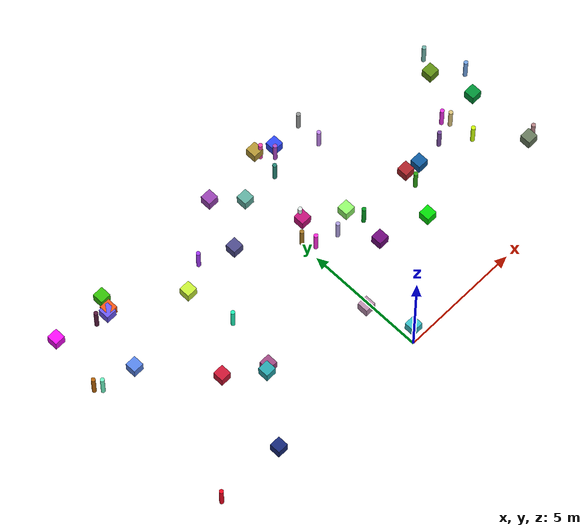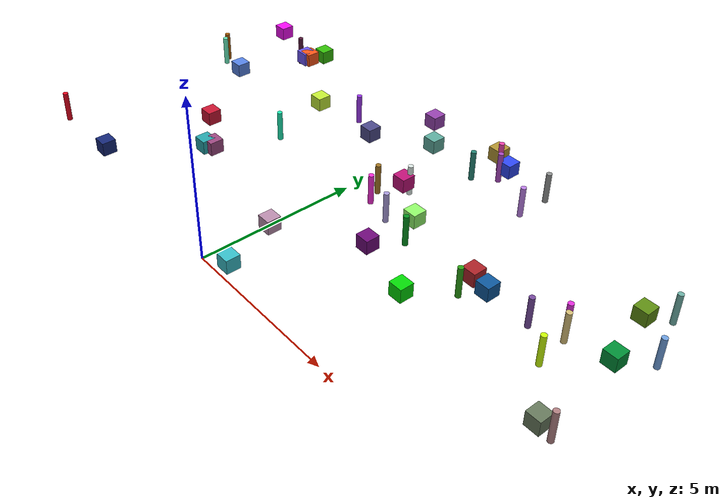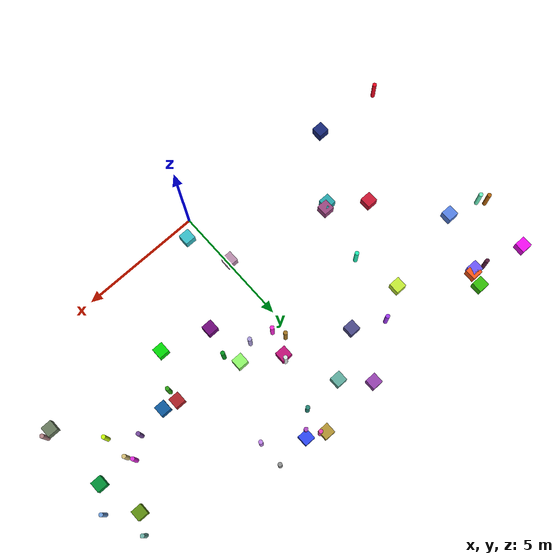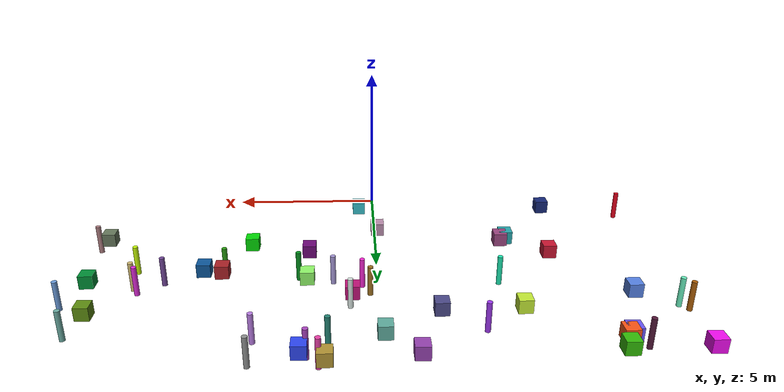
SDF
<sdf version="1.7">
 <world name="warehouse">
  <model name="ground_plane">
   <static>true</static>
   <link name="link">
    <collision name="collision">
     <geometry><plane><normal>0.0 0.0 1</normal><size>1 1</size></plane></geometry>
    </collision>
   </link>
  </model>
  <model name="unit_cylinder_0">
   <static>true</static>
   <pose>-9.31 0.74 0 0 0 0</pose>
   <link name="link">
    <collision name="collision">
     <geometry><cylinder><radius>0.085000</radius><length>1.000000</length></cylinder></geometry>
    </collision>
    <visual name="visual">
     <geometry><cylinder><radius>0.085000</radius><length>1.000000</length></cylinder></geometry>
     <material>
      <ambient>0.9047835029406357 0.023051582319463026 0.11915560714178841 1</ambient>
      <diffuse>0.9047835029406357 0.023051582319463026 0.11915560714178841 1</diffuse>
      <script><uri>file://media/materials/scripts/gazebo.material</uri><name>Gazebo/RandomColor0</name></script>
     </material>
    </visual>
   </link>
  </model>
  <model name="unit_cylinder_1">
   <static>true</static>
   <pose>2.09 9.25 0 0 0 0</pose>
   <link name="link">
    <collision name="collision">
     <geometry><cylinder><radius>0.085000</radius><length>1.000000</length></cylinder></geometry>
    </collision>
    <visual name="visual">
     <geometry><cylinder><radius>0.085000</radius><length>1.000000</length></cylinder></geometry>
     <material>
      <ambient>0.6712236063052989 0.28022208477753974 0.7576344542905525 1</ambient>
      <diffuse>0.6712236063052989 0.28022208477753974 0.7576344542905525 1</diffuse>
      <script><uri>file://media/materials/scripts/gazebo.material</uri><name>Gazebo/RandomColor1</name></script>
     </material>
    </visual>
   </link>
  </model>
  <model name="unit_box_4">
   <static>true</static>
   <pose>2.26 9.46 0 0 0 0</pose>
   <link name="link">
    <collision name="collision">
     <geometry><box><size>0.450000 0.450000 0.450000</size></box></geometry>
    </collision>
    <visual name="visual">
     <geometry><box><size>0.450000 0.450000 0.450000</size></box></geometry>
     <material>
      <ambient>0.17914409994291802 0.2792094183445011 0.9497461319518756 1</ambient>
      <diffuse>0.17914409994291802 0.2792094183445011 0.9497461319518756 1</diffuse>
      <script><uri>file://media/materials/scripts/gazebo.material</uri><name>Gazebo/RandomColor4</name></script>
     </material>
    </visual>
   </link>
  </model>
  <model name="unit_cylinder_4">
   <static>true</static>
   <pose>7.89 4.45 0 0 0 0</pose>
   <link name="link">
    <collision name="collision">
     <geometry><cylinder><radius>0.085000</radius><length>1.000000</length></cylinder></geometry>
    </collision>
    <visual name="visual">
     <geometry><cylinder><radius>0.085000</radius><length>1.000000</length></cylinder></geometry>
     <material>
      <ambient>0.7889028668075904 0.9948711298306502 0.03364927283112962 1</ambient>
      <diffuse>0.7889028668075904 0.9948711298306502 0.03364927283112962 1</diffuse>
      <script><uri>file://media/materials/scripts/gazebo.material</uri><name>Gazebo/RandomColor4</name></script>
     </material>
    </visual>
   </link>
  </model>
  <model name="unit_box_5">
   <static>true</static>
   <pose>1.55 9.8 0 0 0 0</pose>
   <link name="link">
    <collision name="collision">
     <geometry><box><size>0.450000 0.450000 0.450000</size></box></geometry>
    </collision>
    <visual name="visual">
     <geometry><box><size>0.450000 0.450000 0.450000</size></box></geometry>
     <material>
      <ambient>0.6938712094746721 0.5785267622158523 0.20112905594126762 1</ambient>
      <diffuse>0.6938712094746721 0.5785267622158523 0.20112905594126762 1</diffuse>
      <script><uri>file://media/materials/scripts/gazebo.material</uri><name>Gazebo/RandomColor5</name></script>
     </material>
    </visual>
   </link>
  </model>
  <model name="unit_cylinder_5">
   <static>true</static>
   <pose>6.85 5.22 0 0 0 0</pose>
   <link name="link">
    <collision name="collision">
     <geometry><cylinder><radius>0.085000</radius><length>1.000000</length></cylinder></geometry>
    </collision>
    <visual name="visual">
     <geometry><cylinder><radius>0.085000</radius><length>1.000000</length></cylinder></geometry>
     <material>
      <ambient>0.46176612906261505 0.29041169554525215 0.6156618961442007 1</ambient>
      <diffuse>0.46176612906261505 0.29041169554525215 0.6156618961442007 1</diffuse>
      <script><uri>file://media/materials/scripts/gazebo.material</uri><name>Gazebo/RandomColor5</name></script>
     </material>
    </visual>
   </link>
  </model>
  <model name="unit_box_6">
   <static>true</static>
   <pose>-7.88 6.69 0 0 0 0</pose>
   <link name="link">
    <collision name="collision">
     <geometry><box><size>0.450000 0.450000 0.450000</size></box></geometry>
    </collision>
    <visual name="visual">
     <geometry><box><size>0.450000 0.450000 0.450000</size></box></geometry>
     <material>
      <ambient>0.3386169194189679 0.5125222105807047 0.8989240729054137 1</ambient>
      <diffuse>0.3386169194189679 0.5125222105807047 0.8989240729054137 1</diffuse>
      <script><uri>file://media/materials/scripts/gazebo.material</uri><name>Gazebo/RandomColor6</name></script>
     </material>
    </visual>
   </link>
  </model>
  <model name="unit_cylinder_6">
   <static>true</static>
   <pose>1.73 9.67 0 0 0 0</pose>
   <link name="link">
    <collision name="collision">
     <geometry><cylinder><radius>0.085000</radius><length>1.000000</length></cylinder></geometry>
    </collision>
    <visual name="visual">
     <geometry><cylinder><radius>0.085000</radius><length>1.000000</length></cylinder></geometry>
     <material>
      <ambient>0.9161633150298063 0.25547223576205313 0.6629133839460231 1</ambient>
      <diffuse>0.9161633150298063 0.25547223576205313 0.6629133839460231 1</diffuse>
      <script><uri>file://media/materials/scripts/gazebo.material</uri><name>Gazebo/RandomColor6</name></script>
     </material>
    </visual>
   </link>
  </model>
  <model name="unit_cylinder_8">
   <static>true</static>
   <pose>2.53 5.01 0 0 0 0</pose>
   <link name="link">
    <collision name="collision">
     <geometry><cylinder><radius>0.085000</radius><length>1.000000</length></cylinder></geometry>
    </collision>
    <visual name="visual">
     <geometry><cylinder><radius>0.085000</radius><length>1.000000</length></cylinder></geometry>
     <material>
      <ambient>0.01718716941875098 0.5703696041209311 0.11978460807293412 1</ambient>
      <diffuse>0.01718716941875098 0.5703696041209311 0.11978460807293412 1</diffuse>
      <script><uri>file://media/materials/scripts/gazebo.material</uri><name>Gazebo/RandomColor8</name></script>
     </material>
    </visual>
   </link>
  </model>
  <model name="unit_cylinder_9">
   <static>true</static>
   <pose>-3.94 5.5 0 0 0 0</pose>
   <link name="link">
    <collision name="collision">
     <geometry><cylinder><radius>0.085000</radius><length>1.000000</length></cylinder></geometry>
    </collision>
    <visual name="visual">
     <geometry><cylinder><radius>0.085000</radius><length>1.000000</length></cylinder></geometry>
     <material>
      <ambient>0.1116179027003883 0.9087895362525779 0.6960776950246852 1</ambient>
      <diffuse>0.1116179027003883 0.9087895362525779 0.6960776950246852 1</diffuse>
      <script><uri>file://media/materials/scripts/gazebo.material</uri><name>Gazebo/RandomColor9</name></script>
     </material>
    </visual>
   </link>
  </model>
  <model name="unit_box_10">
   <static>true</static>
   <pose>-1.84 7.51 0 0 0 0</pose>
   <link name="link">
    <collision name="collision">
     <geometry><box><size>0.450000 0.450000 0.450000</size></box></geometry>
    </collision>
    <visual name="visual">
     <geometry><box><size>0.450000 0.450000 0.450000</size></box></geometry>
     <material>
      <ambient>0.2973531770069371 0.28898520929455274 0.5385525794331161 1</ambient>
      <diffuse>0.2973531770069371 0.28898520929455274 0.5385525794331161 1</diffuse>
      <script><uri>file://media/materials/scripts/gazebo.material</uri><name>Gazebo/RandomColor10</name></script>
     </material>
    </visual>
   </link>
  </model>
  <model name="unit_cylinder_10">
   <static>true</static>
   <pose>4.96 4.65 0 0 0 0</pose>
   <link name="link">
    <collision name="collision">
     <geometry><cylinder><radius>0.085000</radius><length>1.000000</length></cylinder></geometry>
    </collision>
    <visual name="visual">
     <geometry><cylinder><radius>0.085000</radius><length>1.000000</length></cylinder></geometry>
     <material>
      <ambient>0.16912934506949673 0.6153553816697053 0.07822861433148753 1</ambient>
      <diffuse>0.16912934506949673 0.6153553816697053 0.07822861433148753 1</diffuse>
      <script><uri>file://media/materials/scripts/gazebo.material</uri><name>Gazebo/RandomColor10</name></script>
     </material>
    </visual>
   </link>
  </model>
  <model name="unit_box_11">
   <static>true</static>
   <pose>2.23 3.88 0 0 0 0</pose>
   <link name="link">
    <collision name="collision">
     <geometry><box><size>0.450000 0.450000 0.450000</size></box></geometry>
    </collision>
    <visual name="visual">
     <geometry><box><size>0.450000 0.450000 0.450000</size></box></geometry>
     <material>
      <ambient>0.4302361310819982 0.03853227566153339 0.47764017015302784 1</ambient>
      <diffuse>0.4302361310819982 0.03853227566153339 0.47764017015302784 1</diffuse>
      <script><uri>file://media/materials/scripts/gazebo.material</uri><name>Gazebo/RandomColor11</name></script>
     </material>
    </visual>
   </link>
  </model>
  <model name="unit_box_12">
   <static>true</static>
   <pose>4.97 5.17 0 0 0 0</pose>
   <link name="link">
    <collision name="collision">
     <geometry><box><size>0.450000 0.450000 0.450000</size></box></geometry>
    </collision>
    <visual name="visual">
     <geometry><box><size>0.450000 0.450000 0.450000</size></box></geometry>
     <material>
      <ambient>0.6669949250603554 0.13138758846844167 0.15571909348334123 1</ambient>
      <diffuse>0.6669949250603554 0.13138758846844167 0.15571909348334123 1</diffuse>
      <script><uri>file://media/materials/scripts/gazebo.material</uri><name>Gazebo/RandomColor12</name></script>
     </material>
    </visual>
   </link>
  </model>
  <model name="unit_cylinder_13">
   <static>true</static>
   <pose>1.41 5.28 0 0 0 0</pose>
   <link name="link">
    <collision name="collision">
     <geometry><cylinder><radius>0.085000</radius><length>1.000000</length></cylinder></geometry>
    </collision>
    <visual name="visual">
     <geometry><cylinder><radius>0.085000</radius><length>1.000000</length></cylinder></geometry>
     <material>
      <ambient>0.6605344561724622 0.6056137770944351 0.856247741376489 1</ambient>
      <diffuse>0.6605344561724622 0.6056137770944351 0.856247741376489 1</diffuse>
      <script><uri>file://media/materials/scripts/gazebo.material</uri><name>Gazebo/RandomColor13</name></script>
     </material>
    </visual>
   </link>
  </model>
  <model name="unit_box_14">
   <static>true</static>
   <pose>0.79 6.53 0 0 0 0</pose>
   <link name="link">
    <collision name="collision">
     <geometry><box><size>0.450000 0.450000 0.450000</size></box></geometry>
    </collision>
    <visual name="visual">
     <geometry><box><size>0.450000 0.450000 0.450000</size></box></geometry>
     <material>
      <ambient>0.7538153398190163 0.06795699227822727 0.47259510909941604 1</ambient>
      <diffuse>0.7538153398190163 0.06795699227822727 0.47259510909941604 1</diffuse>
      <script><uri>file://media/materials/scripts/gazebo.material</uri><name>Gazebo/RandomColor14</name></script>
     </material>
    </visual>
   </link>
  </model>
  <model name="unit_box_15">
   <static>true</static>
   <pose>-6.75 9.57 0 0 0 0</pose>
   <link name="link">
    <collision name="collision">
     <geometry><box><size>0.450000 0.450000 0.450000</size></box></geometry>
    </collision>
    <visual name="visual">
     <geometry><box><size>0.450000 0.450000 0.450000</size></box></geometry>
     <material>
      <ambient>0.20076225076161447 0.7393719394519983 0.032462188200200526 1</ambient>
      <diffuse>0.20076225076161447 0.7393719394519983 0.032462188200200526 1</diffuse>
      <script><uri>file://media/materials/scripts/gazebo.material</uri><name>Gazebo/RandomColor15</name></script>
     </material>
    </visual>
   </link>
  </model>
  <model name="unit_cylinder_15">
   <static>true</static>
   <pose>-9.23 6.99 0 0 0 0</pose>
   <link name="link">
    <collision name="collision">
     <geometry><cylinder><radius>0.085000</radius><length>1.000000</length></cylinder></geometry>
    </collision>
    <visual name="visual">
     <geometry><cylinder><radius>0.085000</radius><length>1.000000</length></cylinder></geometry>
     <material>
      <ambient>0.41721241977985624 0.9431030662051431 0.7522219734489143 1</ambient>
      <diffuse>0.41721241977985624 0.9431030662051431 0.7522219734489143 1</diffuse>
      <script><uri>file://media/materials/scripts/gazebo.material</uri><name>Gazebo/RandomColor15</name></script>
     </material>
    </visual>
   </link>
  </model>
  <model name="unit_box_16">
   <static>true</static>
   <pose>-6.45 0.63 0 0 0 0</pose>
   <link name="link">
    <collision name="collision">
     <geometry><box><size>0.450000 0.450000 0.450000</size></box></geometry>
    </collision>
    <visual name="visual">
     <geometry><box><size>0.450000 0.450000 0.450000</size></box></geometry>
     <material>
      <ambient>0.0846283154373142 0.15501449194377537 0.4669067940072428 1</ambient>
      <diffuse>0.0846283154373142 0.15501449194377537 0.4669067940072428 1</diffuse>
      <script><uri>file://media/materials/scripts/gazebo.material</uri><name>Gazebo/RandomColor16</name></script>
     </material>
    </visual>
   </link>
  </model>
  <model name="unit_cylinder_17">
   <static>true</static>
   <pose>3.67 9.57 0 0 0 0</pose>
   <link name="link">
    <collision name="collision">
     <geometry><cylinder><radius>0.085000</radius><length>1.000000</length></cylinder></geometry>
    </collision>
    <visual name="visual">
     <geometry><cylinder><radius>0.085000</radius><length>1.000000</length></cylinder></geometry>
     <material>
      <ambient>0.5582854123085184 0.5653918887851312 0.562862018053068 1</ambient>
      <diffuse>0.5582854123085184 0.5653918887851312 0.562862018053068 1</diffuse>
      <script><uri>file://media/materials/scripts/gazebo.material</uri><name>Gazebo/RandomColor17</name></script>
     </material>
    </visual>
   </link>
  </model>
  <model name="unit_box_19">
   <static>true</static>
   <pose>-6.92 9.04 0 0 0 0</pose>
   <link name="link">
    <collision name="collision">
     <geometry><box><size>0.450000 0.450000 0.450000</size></box></geometry>
    </collision>
    <visual name="visual">
     <geometry><box><size>0.450000 0.450000 0.450000</size></box></geometry>
     <material>
      <ambient>0.9895236635824118 0.3355351557203067 0.09421623000026991 1</ambient>
      <diffuse>0.9895236635824118 0.3355351557203067 0.09421623000026991 1</diffuse>
      <script><uri>file://media/materials/scripts/gazebo.material</uri><name>Gazebo/RandomColor19</name></script>
     </material>
    </visual>
   </link>
  </model>
  <model name="unit_box_20">
   <static>true</static>
   <pose>4.21 3.3 0 0 0 0</pose>
   <link name="link">
    <collision name="collision">
     <geometry><box><size>0.450000 0.450000 0.450000</size></box></geometry>
    </collision>
    <visual name="visual">
     <geometry><box><size>0.450000 0.450000 0.450000</size></box></geometry>
     <material>
      <ambient>0.013677003550276567 0.848537743852048 0.026521367413688712 1</ambient>
      <diffuse>0.013677003550276567 0.848537743852048 0.026521367413688712 1</diffuse>
      <script><uri>file://media/materials/scripts/gazebo.material</uri><name>Gazebo/RandomColor20</name></script>
     </material>
    </visual>
   </link>
  </model>
  <model name="unit_cylinder_20">
   <static>true</static>
   <pose>0.23 6.01 0 0 0 0</pose>
   <link name="link">
    <collision name="collision">
     <geometry><cylinder><radius>0.085000</radius><length>1.000000</length></cylinder></geometry>
    </collision>
    <visual name="visual">
     <geometry><cylinder><radius>0.085000</radius><length>1.000000</length></cylinder></geometry>
     <material>
      <ambient>0.6309131872008131 0.45204805856701114 0.13549408073202385 1</ambient>
      <diffuse>0.6309131872008131 0.45204805856701114 0.13549408073202385 1</diffuse>
      <script><uri>file://media/materials/scripts/gazebo.material</uri><name>Gazebo/RandomColor20</name></script>
     </material>
    </visual>
   </link>
  </model>
  <model name="unit_box_21">
   <static>true</static>
   <pose>-4.58 3.09 0 0 0 0</pose>
   <link name="link">
    <collision name="collision">
     <geometry><box><size>0.450000 0.450000 0.450000</size></box></geometry>
    </collision>
    <visual name="visual">
     <geometry><box><size>0.450000 0.450000 0.450000</size></box></geometry>
     <material>
      <ambient>0.15306389208201765 0.6494699788918694 0.6737951647985277 1</ambient>
      <diffuse>0.15306389208201765 0.6494699788918694 0.6737951647985277 1</diffuse>
      <script><uri>file://media/materials/scripts/gazebo.material</uri><name>Gazebo/RandomColor21</name></script>
     </material>
    </visual>
   </link>
  </model>
  <model name="unit_box_22">
   <static>true</static>
   <pose>9.23 2.81 0 0 0 0</pose>
   <link name="link">
    <collision name="collision">
     <geometry><box><size>0.450000 0.450000 0.450000</size></box></geometry>
    </collision>
    <visual name="visual">
     <geometry><box><size>0.450000 0.450000 0.450000</size></box></geometry>
     <material>
      <ambient>0.4021549974562765 0.4716885419075503 0.36194371682791215 1</ambient>
      <diffuse>0.4021549974562765 0.4716885419075503 0.36194371682791215 1</diffuse>
      <script><uri>file://media/materials/scripts/gazebo.material</uri><name>Gazebo/RandomColor22</name></script>
     </material>
    </visual>
   </link>
  </model>
  <model name="unit_cylinder_22">
   <static>true</static>
   <pose>7.77 5.51 0 0 0 0</pose>
   <link name="link">
    <collision name="collision">
     <geometry><cylinder><radius>0.085000</radius><length>1.000000</length></cylinder></geometry>
    </collision>
    <visual name="visual">
     <geometry><cylinder><radius>0.085000</radius><length>1.000000</length></cylinder></geometry>
     <material>
      <ambient>0.8340204630547031 0.7414760496967856 0.4625020717215428 1</ambient>
      <diffuse>0.8340204630547031 0.7414760496967856 0.4625020717215428 1</diffuse>
      <script><uri>file://media/materials/scripts/gazebo.material</uri><name>Gazebo/RandomColor22</name></script>
     </material>
    </visual>
   </link>
  </model>
  <model name="unit_box_23">
   <static>true</static>
   <pose>-9.13 9.55 0 0 0 0</pose>
   <link name="link">
    <collision name="collision">
     <geometry><box><size>0.450000 0.450000 0.450000</size></box></geometry>
    </collision>
    <visual name="visual">
     <geometry><box><size>0.450000 0.450000 0.450000</size></box></geometry>
     <material>
      <ambient>0.9530057805638175 0.05120913139332506 0.9464714285250747 1</ambient>
      <diffuse>0.9530057805638175 0.05120913139332506 0.9464714285250747 1</diffuse>
      <script><uri>file://media/materials/scripts/gazebo.material</uri><name>Gazebo/RandomColor23</name></script>
     </material>
    </visual>
   </link>
  </model>
  <model name="unit_cylinder_23">
   <static>true</static>
   <pose>1.5 8.69 0 0 0 0</pose>
   <link name="link">
    <collision name="collision">
     <geometry><cylinder><radius>0.085000</radius><length>1.000000</length></cylinder></geometry>
    </collision>
    <visual name="visual">
     <geometry><cylinder><radius>0.085000</radius><length>1.000000</length></cylinder></geometry>
     <material>
      <ambient>0.14821952100664804 0.5195731158705452 0.4574937876894154 1</ambient>
      <diffuse>0.14821952100664804 0.5195731158705452 0.4574937876894154 1</diffuse>
      <script><uri>file://media/materials/scripts/gazebo.material</uri><name>Gazebo/RandomColor23</name></script>
     </material>
    </visual>
   </link>
  </model>
  <model name="unit_cylinder_25">
   <static>true</static>
   <pose>7.59 5.79 0 0 0 0</pose>
   <link name="link">
    <collision name="collision">
     <geometry><cylinder><radius>0.085000</radius><length>1.000000</length></cylinder></geometry>
    </collision>
    <visual name="visual">
     <geometry><cylinder><radius>0.085000</radius><length>1.000000</length></cylinder></geometry>
     <material>
      <ambient>0.8836864098514743 0.17499654515620344 0.8627066899638722 1</ambient>
      <diffuse>0.8836864098514743 0.17499654515620344 0.8627066899638722 1</diffuse>
      <script><uri>file://media/materials/scripts/gazebo.material</uri><name>Gazebo/RandomColor25</name></script>
     </material>
    </visual>
   </link>
  </model>
  <model name="unit_cylinder_27">
   <static>true</static>
   <pose>9.73 6.58 0 0 0 0</pose>
   <link name="link">
    <collision name="collision">
     <geometry><cylinder><radius>0.085000</radius><length>1.000000</length></cylinder></geometry>
    </collision>
    <visual name="visual">
     <geometry><cylinder><radius>0.085000</radius><length>1.000000</length></cylinder></geometry>
     <material>
      <ambient>0.4320293674464467 0.6235219583579364 0.8694835852496756 1</ambient>
      <diffuse>0.4320293674464467 0.6235219583579364 0.8694835852496756 1</diffuse>
      <script><uri>file://media/materials/scripts/gazebo.material</uri><name>Gazebo/RandomColor27</name></script>
     </material>
    </visual>
   </link>
  </model>
  <model name="unit_box_28">
   <static>true</static>
   <pose>9.12 5.63 0 0 0 0</pose>
   <link name="link">
    <collision name="collision">
     <geometry><box><size>0.450000 0.450000 0.450000</size></box></geometry>
    </collision>
    <visual name="visual">
     <geometry><box><size>0.450000 0.450000 0.450000</size></box></geometry>
     <material>
      <ambient>0.0006447651987864234 0.5593685672654196 0.21085211755538158 1</ambient>
      <diffuse>0.0006447651987864234 0.5593685672654196 0.21085211755538158 1</diffuse>
      <script><uri>file://media/materials/scripts/gazebo.material</uri><name>Gazebo/RandomColor28</name></script>
     </material>
    </visual>
   </link>
  </model>
  <model name="unit_box_30">
   <static>true</static>
   <pose>-4.32 7.46 0 0 0 0</pose>
   <link name="link">
    <collision name="collision">
     <geometry><box><size>0.450000 0.450000 0.450000</size></box></geometry>
    </collision>
    <visual name="visual">
     <geometry><box><size>0.450000 0.450000 0.450000</size></box></geometry>
     <material>
      <ambient>0.7692543529741322 0.9234313343259567 0.2104339404650828 1</ambient>
      <diffuse>0.7692543529741322 0.9234313343259567 0.2104339404650828 1</diffuse>
      <script><uri>file://media/materials/scripts/gazebo.material</uri><name>Gazebo/RandomColor30</name></script>
     </material>
    </visual>
   </link>
  </model>
  <model name="unit_box_31">
   <static>true</static>
   <pose>-0.12 2.31 0 0 0 0</pose>
   <link name="link">
    <collision name="collision">
     <geometry><box><size>0.450000 0.450000 0.450000</size></box></geometry>
    </collision>
    <visual name="visual">
     <geometry><box><size>0.450000 0.450000 0.450000</size></box></geometry>
     <material>
      <ambient>0.7276747414798781 0.554531826871016 0.676690822829485 1</ambient>
      <diffuse>0.7276747414798781 0.554531826871016 0.676690822829485 1</diffuse>
      <script><uri>file://media/materials/scripts/gazebo.material</uri><name>Gazebo/RandomColor31</name></script>
     </material>
    </visual>
   </link>
  </model>
  <model name="unit_cylinder_31">
   <static>true</static>
   <pose>3.66 8.48 0 0 0 0</pose>
   <link name="link">
    <collision name="collision">
     <geometry><cylinder><radius>0.085000</radius><length>1.000000</length></cylinder></geometry>
    </collision>
    <visual name="visual">
     <geometry><cylinder><radius>0.085000</radius><length>1.000000</length></cylinder></geometry>
     <material>
      <ambient>0.7385471879682959 0.5002093170028802 0.9034997269496055 1</ambient>
      <diffuse>0.7385471879682959 0.5002093170028802 0.9034997269496055 1</diffuse>
      <script><uri>file://media/materials/scripts/gazebo.material</uri><name>Gazebo/RandomColor31</name></script>
     </material>
    </visual>
   </link>
  </model>
  <model name="unit_box_32">
   <static>true</static>
   <pose>8.66 7.42 0 0 0 0</pose>
   <link name="link">
    <collision name="collision">
     <geometry><box><size>0.450000 0.450000 0.450000</size></box></geometry>
    </collision>
    <visual name="visual">
     <geometry><box><size>0.450000 0.450000 0.450000</size></box></geometry>
     <material>
      <ambient>0.36881332130701894 0.5544101990547647 0.07219693294092733 1</ambient>
      <diffuse>0.36881332130701894 0.5544101990547647 0.07219693294092733 1</diffuse>
      <script><uri>file://media/materials/scripts/gazebo.material</uri><name>Gazebo/RandomColor32</name></script>
     </material>
    </visual>
   </link>
  </model>
  <model name="unit_box_33">
   <static>true</static>
   <pose>-4.37 3.23 0 0 0 0</pose>
   <link name="link">
    <collision name="collision">
     <geometry><box><size>0.450000 0.450000 0.450000</size></box></geometry>
    </collision>
    <visual name="visual">
     <geometry><box><size>0.450000 0.450000 0.450000</size></box></geometry>
     <material>
      <ambient>0.6102460608460141 0.2798656664655472 0.5039664382373764 1</ambient>
      <diffuse>0.6102460608460141 0.2798656664655472 0.5039664382373764 1</diffuse>
      <script><uri>file://media/materials/scripts/gazebo.material</uri><name>Gazebo/RandomColor33</name></script>
     </material>
    </visual>
   </link>
  </model>
  <model name="unit_box_34">
   <static>true</static>
   <pose>-1.07 9.6 0 0 0 0</pose>
   <link name="link">
    <collision name="collision">
     <geometry><box><size>0.450000 0.450000 0.450000</size></box></geometry>
    </collision>
    <visual name="visual">
     <geometry><box><size>0.450000 0.450000 0.450000</size></box></geometry>
     <material>
      <ambient>0.587040395930564 0.259267117937646 0.6878834643616625 1</ambient>
      <diffuse>0.587040395930564 0.259267117937646 0.6878834643616625 1</diffuse>
      <script><uri>file://media/materials/scripts/gazebo.material</uri><name>Gazebo/RandomColor34</name></script>
     </material>
    </visual>
   </link>
  </model>
  <model name="unit_cylinder_34">
   <static>true</static>
   <pose>9.57 2.91 0 0 0 0</pose>
   <link name="link">
    <collision name="collision">
     <geometry><cylinder><radius>0.085000</radius><length>1.000000</length></cylinder></geometry>
    </collision>
    <visual name="visual">
     <geometry><cylinder><radius>0.085000</radius><length>1.000000</length></cylinder></geometry>
     <material>
      <ambient>0.6866265726407823 0.49935770532720625 0.5093734244039786 1</ambient>
      <diffuse>0.6866265726407823 0.49935770532720625 0.5093734244039786 1</diffuse>
      <script><uri>file://media/materials/scripts/gazebo.material</uri><name>Gazebo/RandomColor34</name></script>
     </material>
    </visual>
   </link>
  </model>
  <model name="unit_box_35">
   <static>true</static>
   <pose>-0.12 8.64 0 0 0 0</pose>
   <link name="link">
    <collision name="collision">
     <geometry><box><size>0.450000 0.450000 0.450000</size></box></geometry>
    </collision>
    <visual name="visual">
     <geometry><box><size>0.450000 0.450000 0.450000</size></box></geometry>
     <material>
      <ambient>0.37103700896852265 0.6745916867150451 0.6178975991405595 1</ambient>
      <diffuse>0.37103700896852265 0.6745916867150451 0.6178975991405595 1</diffuse>
      <script><uri>file://media/materials/scripts/gazebo.material</uri><name>Gazebo/RandomColor35</name></script>
     </material>
    </visual>
   </link>
  </model>
  <model name="unit_box_37">
   <static>true</static>
   <pose>2.22 5.63 0 0 0 0</pose>
   <link name="link">
    <collision name="collision">
     <geometry><box><size>0.450000 0.450000 0.450000</size></box></geometry>
    </collision>
    <visual name="visual">
     <geometry><box><size>0.450000 0.450000 0.450000</size></box></geometry>
     <material>
      <ambient>0.5655355417569502 0.9744542568341861 0.4149303030439476 1</ambient>
      <diffuse>0.5655355417569502 0.9744542568341861 0.4149303030439476 1</diffuse>
      <script><uri>file://media/materials/scripts/gazebo.material</uri><name>Gazebo/RandomColor37</name></script>
     </material>
    </visual>
   </link>
  </model>
  <model name="unit_cylinder_38">
   <static>true</static>
   <pose>0.48 5.52 0 0 0 0</pose>
   <link name="link">
    <collision name="collision">
     <geometry><cylinder><radius>0.085000</radius><length>1.000000</length></cylinder></geometry>
    </collision>
    <visual name="visual">
     <geometry><cylinder><radius>0.085000</radius><length>1.000000</length></cylinder></geometry>
     <material>
      <ambient>0.9625965750468826 0.16331736921700157 0.832415129544105 1</ambient>
      <diffuse>0.9625965750468826 0.16331736921700157 0.832415129544105 1</diffuse>
      <script><uri>file://media/materials/scripts/gazebo.material</uri><name>Gazebo/RandomColor38</name></script>
     </material>
    </visual>
   </link>
  </model>
  <model name="unit_box_39">
   <static>true</static>
   <pose>0.52 0.5 0 0 0 0</pose>
   <link name="link">
    <collision name="collision">
     <geometry><box><size>0.450000 0.450000 0.450000</size></box></geometry>
    </collision>
    <visual name="visual">
     <geometry><box><size>0.450000 0.450000 0.450000</size></box></geometry>
     <material>
      <ambient>0.21898739172048365 0.746903744662737 0.7869252483322576 1</ambient>
      <diffuse>0.21898739172048365 0.746903744662737 0.7869252483322576 1</diffuse>
      <script><uri>file://media/materials/scripts/gazebo.material</uri><name>Gazebo/RandomColor39</name></script>
     </material>
    </visual>
   </link>
  </model>
  <model name="unit_cylinder_40">
   <static>true</static>
   <pose>0.86 6.72 0 0 0 0</pose>
   <link name="link">
    <collision name="collision">
     <geometry><cylinder><radius>0.085000</radius><length>1.000000</length></cylinder></geometry>
    </collision>
    <visual name="visual">
     <geometry><cylinder><radius>0.085000</radius><length>1.000000</length></cylinder></geometry>
     <material>
      <ambient>0.8604850820153908 0.9085009655691055 0.8919998509213816 1</ambient>
      <diffuse>0.8604850820153908 0.9085009655691055 0.8919998509213816 1</diffuse>
      <script><uri>file://media/materials/scripts/gazebo.material</uri><name>Gazebo/RandomColor40</name></script>
     </material>
    </visual>
   </link>
  </model>
  <model name="unit_box_41">
   <static>true</static>
   <pose>-7.04 8.97 0 0 0 0</pose>
   <link name="link">
    <collision name="collision">
     <geometry><box><size>0.450000 0.450000 0.450000</size></box></geometry>
    </collision>
    <visual name="visual">
     <geometry><box><size>0.450000 0.450000 0.450000</size></box></geometry>
     <material>
      <ambient>0.42556767491030834 0.3456346508214705 0.9731826293789653 1</ambient>
      <diffuse>0.42556767491030834 0.3456346508214705 0.9731826293789653 1</diffuse>
      <script><uri>file://media/materials/scripts/gazebo.material</uri><name>Gazebo/RandomColor41</name></script>
     </material>
    </visual>
   </link>
  </model>
  <model name="unit_cylinder_42">
   <static>true</static>
   <pose>-7.51 9.09 0 0 0 0</pose>
   <link name="link">
    <collision name="collision">
     <geometry><cylinder><radius>0.085000</radius><length>1.000000</length></cylinder></geometry>
    </collision>
    <visual name="visual">
     <geometry><cylinder><radius>0.085000</radius><length>1.000000</length></cylinder></geometry>
     <material>
      <ambient>0.32826240341481605 0.09714189223303127 0.22781184735037208 1</ambient>
      <diffuse>0.32826240341481605 0.09714189223303127 0.22781184735037208 1</diffuse>
      <script><uri>file://media/materials/scripts/gazebo.material</uri><name>Gazebo/RandomColor42</name></script>
     </material>
    </visual>
   </link>
  </model>
  <model name="unit_box_45">
   <static>true</static>
   <pose>-5.87 4.14 0 0 0 0</pose>
   <link name="link">
    <collision name="collision">
     <geometry><box><size>0.450000 0.450000 0.450000</size></box></geometry>
    </collision>
    <visual name="visual">
     <geometry><box><size>0.450000 0.450000 0.450000</size></box></geometry>
     <material>
      <ambient>0.7906683940872864 0.08502529661714808 0.19968080262191634 1</ambient>
      <diffuse>0.7906683940872864 0.08502529661714808 0.19968080262191634 1</diffuse>
      <script><uri>file://media/materials/scripts/gazebo.material</uri><name>Gazebo/RandomColor45</name></script>
     </material>
    </visual>
   </link>
  </model>
  <model name="unit_cylinder_45">
   <static>true</static>
   <pose>-9.46 7.23 0 0 0 0</pose>
   <link name="link">
    <collision name="collision">
     <geometry><cylinder><radius>0.085000</radius><length>1.000000</length></cylinder></geometry>
    </collision>
    <visual name="visual">
     <geometry><cylinder><radius>0.085000</radius><length>1.000000</length></cylinder></geometry>
     <material>
      <ambient>0.691054011778042 0.37989427606211834 0.03906034851589968 1</ambient>
      <diffuse>0.691054011778042 0.37989427606211834 0.03906034851589968 1</diffuse>
      <script><uri>file://media/materials/scripts/gazebo.material</uri><name>Gazebo/RandomColor45</name></script>
     </material>
    </visual>
   </link>
  </model>
  <model name="unit_cylinder_46">
   <static>true</static>
   <pose>-3.12 8.13 0 0 0 0</pose>
   <link name="link">
    <collision name="collision">
     <geometry><cylinder><radius>0.085000</radius><length>1.000000</length></cylinder></geometry>
    </collision>
    <visual name="visual">
     <geometry><cylinder><radius>0.085000</radius><length>1.000000</length></cylinder></geometry>
     <material>
      <ambient>0.6153120942940867 0.21540389297492268 0.9340478646536884 1</ambient>
      <diffuse>0.6153120942940867 0.21540389297492268 0.9340478646536884 1</diffuse>
      <script><uri>file://media/materials/scripts/gazebo.material</uri><name>Gazebo/RandomColor46</name></script>
     </material>
    </visual>
   </link>
  </model>
  <model name="unit_cylinder_47">
   <static>true</static>
   <pose>9.08 8.16 0 0 0 0</pose>
   <link name="link">
    <collision name="collision">
     <geometry><cylinder><radius>0.085000</radius><length>1.000000</length></cylinder></geometry>
    </collision>
    <visual name="visual">
     <geometry><cylinder><radius>0.085000</radius><length>1.000000</length></cylinder></geometry>
     <material>
      <ambient>0.4292239297241216 0.6851731141855494 0.6481613595276831 1</ambient>
      <diffuse>0.4292239297241216 0.6851731141855494 0.6481613595276831 1</diffuse>
      <script><uri>file://media/materials/scripts/gazebo.material</uri><name>Gazebo/RandomColor47</name></script>
     </material>
    </visual>
   </link>
  </model>
  <model name="unit_box_48">
   <static>true</static>
   <pose>5.57 5.05 0 0 0 0</pose>
   <link name="link">
    <collision name="collision">
     <geometry><box><size>0.450000 0.450000 0.450000</size></box></geometry>
    </collision>
    <visual name="visual">
     <geometry><box><size>0.450000 0.450000 0.450000</size></box></geometry>
     <material>
      <ambient>0.0506893510387475 0.3444538723664726 0.6104227119360441 1</ambient>
      <diffuse>0.0506893510387475 0.3444538723664726 0.6104227119360441 1</diffuse>
      <script><uri>file://media/materials/scripts/gazebo.material</uri><name>Gazebo/RandomColor48</name></script>
     </material>
    </visual>
   </link>
  </model>
 </world>
</sdf>
